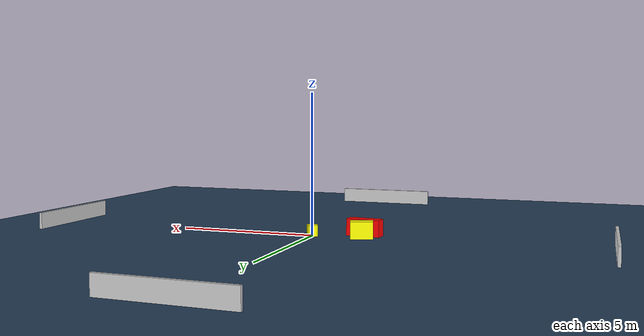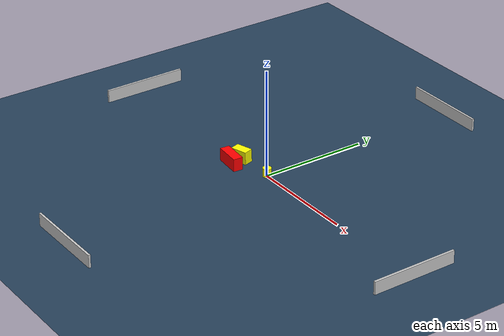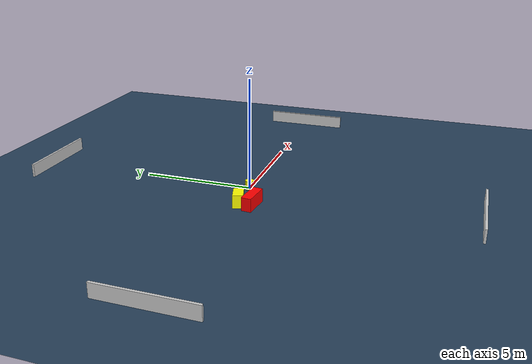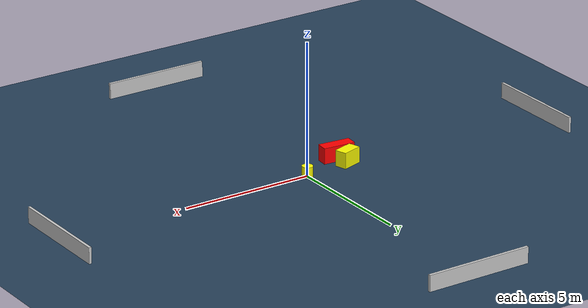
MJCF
<?xml version="1.0" ?>
<mujoco model="generated_environment">
  <option timestep="0.01" integrator="RK4" cone="elliptic"/>
  <default>
    <geom density="1"/>
  </default>
  <asset>
    <texture builtin="gradient" height="3072" name="skybox" rgb1="0.3 0.5 0.7" rgb2="0 0 0" type="skybox" width="512"/>
    <texture builtin="checker" height="300" name="groundplane" rgb1="0.2 0.3 0.4" rgb2="0.1 0.2 0.3" type="2d" width="300"/>
    <material name="groundplane" reflectance="0.2" texrepeat="5 5" texture="groundplane"/>
  </asset>
  <worldbody>
    <light dir="0 0 -1" directional="true" pos="0 0 1.5"/>
    <geom condim="3" friction="0.5 0.005 0.001" material="groundplane" name="floor" pos="0 0 0" size="0 0 0.05" type="plane"/>
    <body name="walls">
      <geom name="wall_1" condim="4" pos="-10.0 0.0 0.3" rgba="0.800000011920929 0.800000011920929 0.800000011920929 1.0" size="0.05 2.0 0.3" type="box"/>
      <geom name="wall_2" condim="4" pos="10.0 0.0 0.3" rgba="0.800000011920929 0.800000011920929 0.800000011920929 1.0" size="0.05 2.0 0.3" type="box"/>
      <geom name="wall_3" condim="4" pos="0.0 -10.0 0.3" rgba="0.800000011920929 0.800000011920929 0.800000011920929 1.0" size="2.0 0.05 0.3" type="box"/>
      <geom name="wall_4" condim="4" pos="0.0 10.0 0.3" rgba="0.800000011920929 0.800000011920929 0.800000011920929 1.0" size="2.0 0.05 0.3" type="box"/>
    </body>
    <body name="robot">
      <joint name="joint_x" type="slide" pos="0 0 0" axis="1 0 0"/>
      <joint name="joint_y" type="slide" pos="0 0 0" axis="0 1 0"/>
      <geom name="robot" type="cylinder" pos="0.0 0.0 0.2" size="0.2 0.2 0.0" mass="5.0" friction="1.0 0.005 0.0001" condim="4" rgba="1.0 1.0 0.0 1.0"/>
    </body>
    <body name="obstacle_1_movable">
      <geom name="obstacle_1_movable" condim="4" pos="-1.7679861529007956 -0.11042391428091411 0.3" euler="0 0 286.40837948864964" friction="0.0 0.005 0.001" rgba="1.0 1.0 0.0 1.0" size="0.2265553306441339 0.3911120864295453 0.3" type="box" mass="0.1"/>
      <joint type="free"/>
    </body>
    <body name="obstacle_2_static">
      <geom name="obstacle_2_static" condim="4" pos="-1.707530368565902 -0.6967416958804205 0.3" euler="0 0 84.67075789337571" friction="0.0 0.005 0.001" rgba="1.0 0.0 0.0 1.0" size="0.22175874611086416 0.6084872579906029 0.3" type="box"/>
    </body>
  </worldbody>
  <actuator>
    <motor name="actuator_x" joint="joint_x" gear="1" ctrlrange="-1 1"/>
    <motor name="actuator_y" joint="joint_y" gear="1" ctrlrange="-1 1"/>
  </actuator>
</mujoco>
